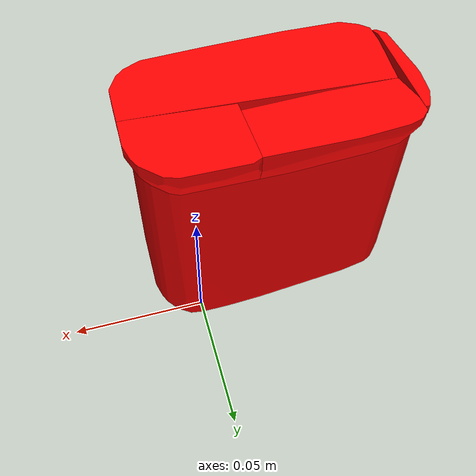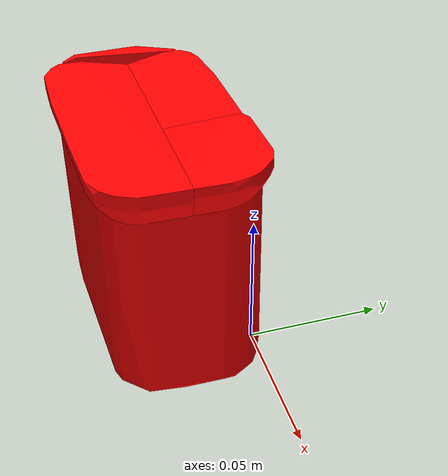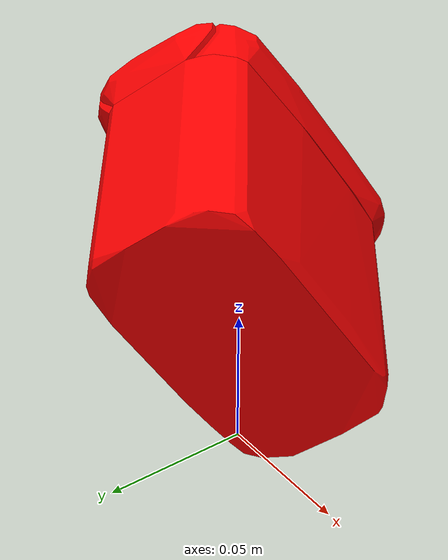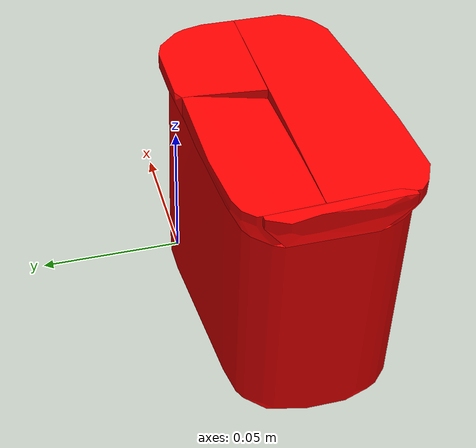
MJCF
<?xml version="1.0" encoding="utf-8"?>
<mujoco>
    <asset>
        <mesh file="ycb/010_potted_meat_can/010_potted_meat_can1.stl" name="potted_meat_can1"></mesh>
        <mesh file="ycb/010_potted_meat_can/010_potted_meat_can2.stl" name="potted_meat_can2"></mesh>
        <mesh file="ycb/010_potted_meat_can/010_potted_meat_can3.stl" name="potted_meat_can3"></mesh>
        <mesh file="ycb/010_potted_meat_can/010_potted_meat_can4.stl" name="potted_meat_can4"></mesh>
        <mesh file="ycb/010_potted_meat_can/010_potted_meat_can5.stl" name="potted_meat_can5"></mesh>
        <material name="block_mat" rgba="1.0 0 0 1.0" specular="0.25" shininess="0.10" reflectance="0.10"></material>
    </asset>
    <worldbody>
        <body>
            <geom type="mesh" mesh="potted_meat_can1" material="block_mat"></geom>
            <geom type="mesh" mesh="potted_meat_can2" material="block_mat"></geom>
            <geom type="mesh" mesh="potted_meat_can3" material="block_mat"></geom>
            <geom type="mesh" mesh="potted_meat_can4" material="block_mat"></geom>
            <geom type="mesh" mesh="potted_meat_can5" material="block_mat"></geom>
            <joint type="free"></joint>
        </body>
    </worldbody>
</mujoco>
